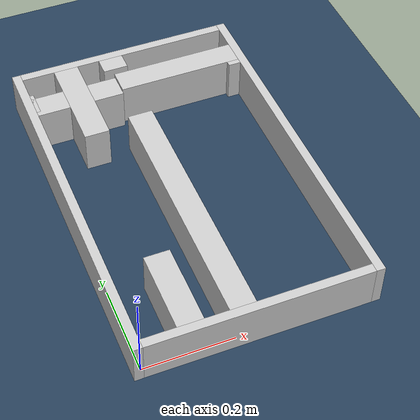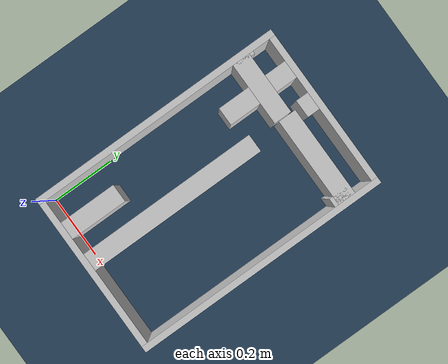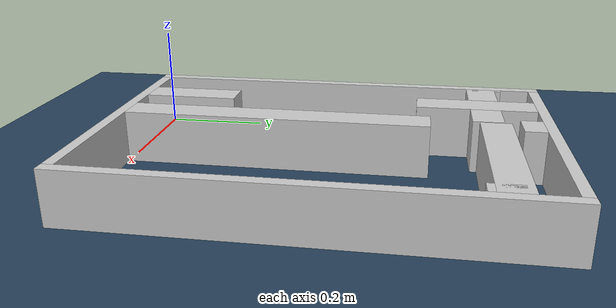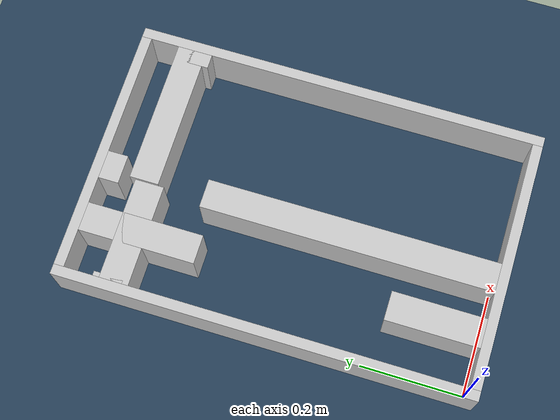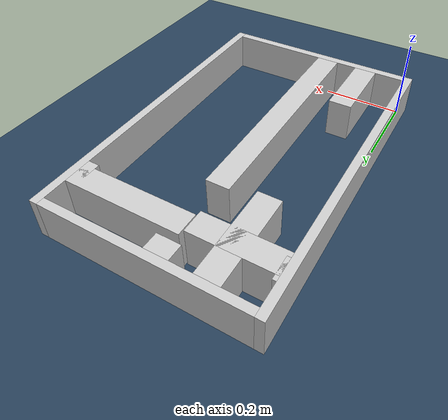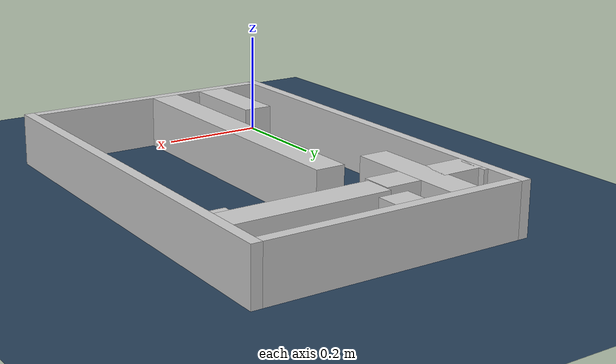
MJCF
<?xml version="1.0" ?>
<mujoco model="generated_real_template">
  <compiler angle="degree"/>
  <option timestep="0.002" integrator="implicitfast" iterations="100" cone="elliptic"/>
  <default>
    <geom density="1"/>
  </default>
  <asset>
    <texture builtin="gradient" height="3072" rgb1="0.3 0.5 0.7" rgb2="0 0 0" type="skybox" width="512"/>
    <texture builtin="checker" height="300" mark="edge" markrgb="0.8 0.8 0.8" name="groundplane" rgb1="0.2 0.3 0.4" rgb2="0.1 0.2 0.3" type="2d" width="300"/>
    <material name="groundplane" reflectance="0.2" texrepeat="5 5" texture="groundplane" texuniform="true"/>
  </asset>
  <worldbody>
    <light dir="0 0 -1" directional="true" pos="0 0 1.5"/>
    <geom name="floor" type="plane" condim="4" friction="0.5 0.005 0.001" material="groundplane" size="0 0 0.05"/>
    <body name="walls">
      <geom name="wall_boundary_left" type="box" condim="4" friction="1.0 0.005 0.0001" rgba="0.8 0.8 0.8 1" pos="-0.010000 0.387500 0.050000" euler="0 0 0.000000" size="0.010000 0.407500 0.050000"/>
      <geom name="wall_boundary_right" type="box" condim="4" friction="1.0 0.005 0.0001" rgba="0.8 0.8 0.8 1" pos="0.500000 0.387500 0.050000" euler="0 0 0.000000" size="0.010000 0.407500 0.050000"/>
      <geom name="wall_boundary_bottom" type="box" condim="4" friction="1.0 0.005 0.0001" rgba="0.8 0.8 0.8 1" pos="0.245000 -0.010000 0.050000" euler="0 0 0.000000" size="0.245000 0.010000 0.050000"/>
      <geom name="wall_boundary_top" type="box" condim="4" friction="1.0 0.005 0.0001" rgba="0.8 0.8 0.8 1" pos="0.245000 0.785000 0.050000" euler="0 0 0.000000" size="0.245000 0.010000 0.050000"/>
      <geom name="wall_inner_1_1" type="box" condim="4" friction="1.0 0.005 0.0001" rgba="0.8 0.8 0.8 1" pos="0.100372 0.677420 0.050000" euler="0 0 0.000000" size="0.100372 0.028500 0.050000"/>
      <geom name="wall_inner_1_2" type="box" condim="4" friction="1.0 0.005 0.0001" rgba="0.8 0.8 0.8 1" pos="0.475940 0.677420 0.050000" euler="0 0 0.000000" size="0.014060 0.028500 0.050000"/>
      <geom name="wall_inner_2_1" type="box" condim="4" friction="1.0 0.005 0.0001" rgba="0.8 0.8 0.8 1" pos="0.004409 0.689876 0.050000" euler="0 0 0.000000" size="0.004409 0.028500 0.050000"/>
      <geom name="wall_inner_2_2" type="box" condim="4" friction="1.0 0.005 0.0001" rgba="0.8 0.8 0.8 1" pos="0.346585 0.689876 0.050000" euler="0 0 0.000000" size="0.143415 0.028500 0.050000"/>
      <geom name="wall_inner_3_1" type="box" condim="4" friction="1.0 0.005 0.0001" rgba="0.8 0.8 0.8 1" pos="0.212489 0.286317 0.050000" euler="0 0 90.000000" size="0.286317 0.028500 0.050000"/>
      <geom name="wall_inner_3_2" type="box" condim="4" friction="1.0 0.005 0.0001" rgba="0.8 0.8 0.8 1" pos="0.212489 0.755012 0.050000" euler="0 0 90.000000" size="0.019988 0.028500 0.050000"/>
      <geom name="wall_inner_4_1" type="box" condim="4" friction="1.0 0.005 0.0001" rgba="0.8 0.8 0.8 1" pos="0.103508 0.090799 0.050000" euler="0 0 90.000000" size="0.090799 0.028500 0.050000"/>
      <geom name="wall_inner_4_2" type="box" condim="4" friction="1.0 0.005 0.0001" rgba="0.8 0.8 0.8 1" pos="0.103508 0.660975 0.050000" euler="0 0 90.000000" size="0.114025 0.028500 0.050000"/>
    </body>
  </worldbody>
</mujoco>
